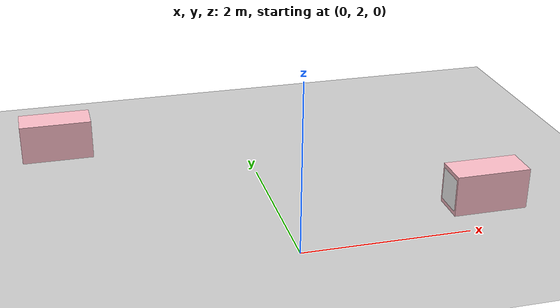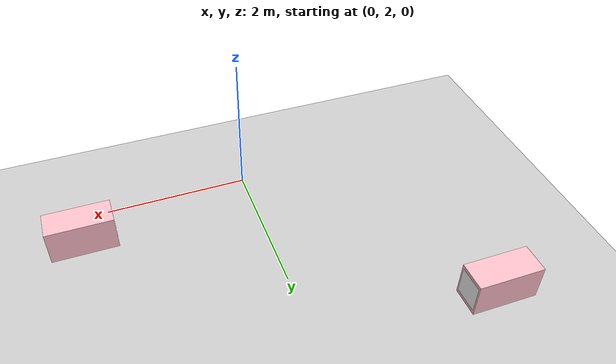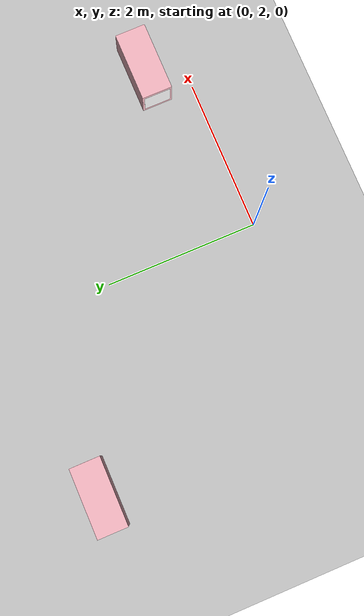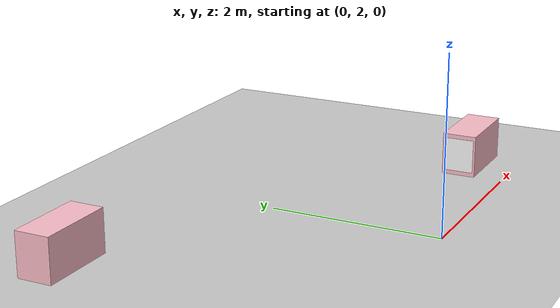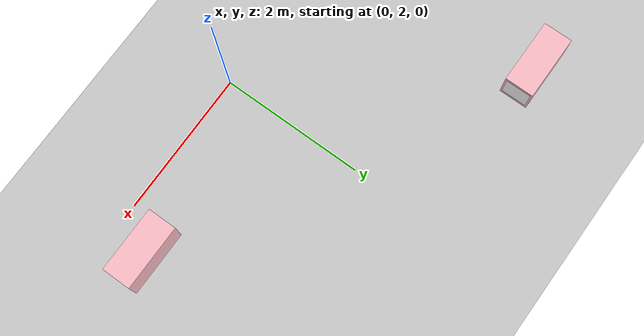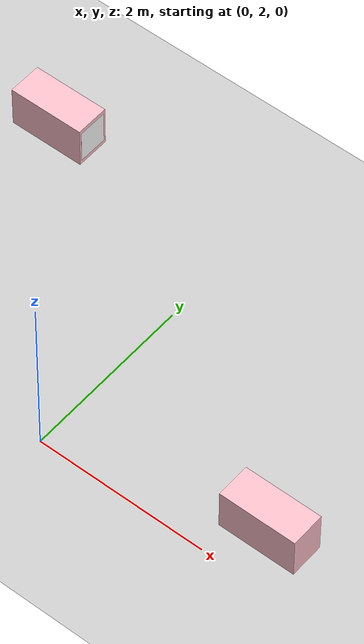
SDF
<sdf version="1.9">
 <world name="pig_pen_8units_world">
  <model name="ground_plane">
   <static>true</static>
   <link name="link">
    <collision name="collision">
     <geometry><plane><normal>0 0 1</normal><size>20 20</size></plane></geometry>
     <surface><friction><ode><mu>1.0</mu><mu2>1.0</mu2></ode></friction></surface>
    </collision>
    <visual name="visual">
     <geometry><plane><normal>0 0 1</normal><size>20 20</size></plane></geometry>
     <material>
      <ambient>0.8 0.8 0.8 1</ambient>
      <diffuse>0.8 0.8 0.8 1</diffuse>
      <specular>0.2 0.2 0.2 1</specular>
     </material>
    </visual>
   </link>
  </model>
  <include><uri>model://farm_pig</uri><name>pig1</name><pose>-2.4 5.105 0.27 0 0 0</pose></include>
  <include><uri>model://farm_pig</uri><name>pig6</name><pose>2.4 2.5155 0.27 0 0 3.1416</pose></include>
 </world>
</sdf>
